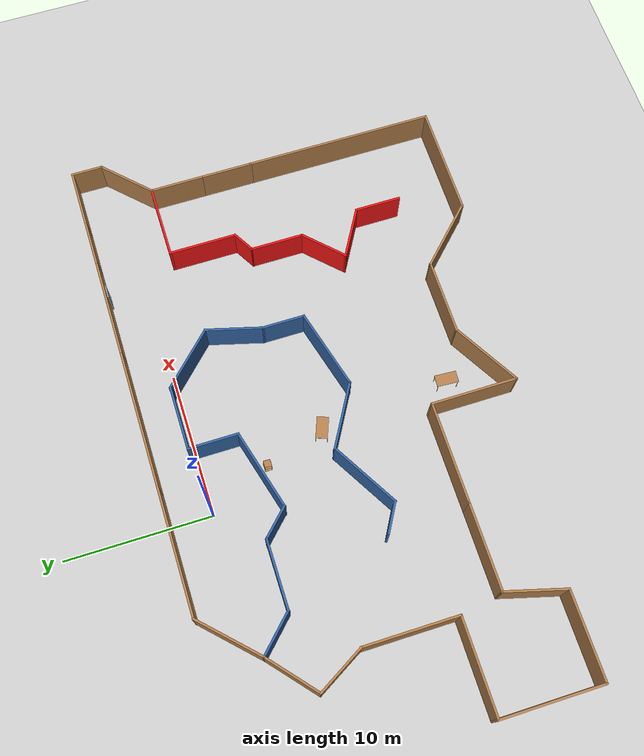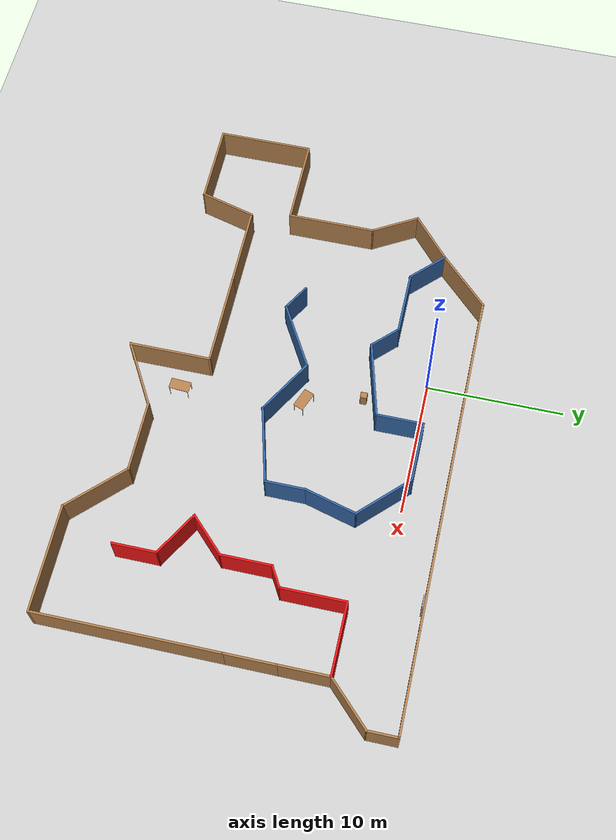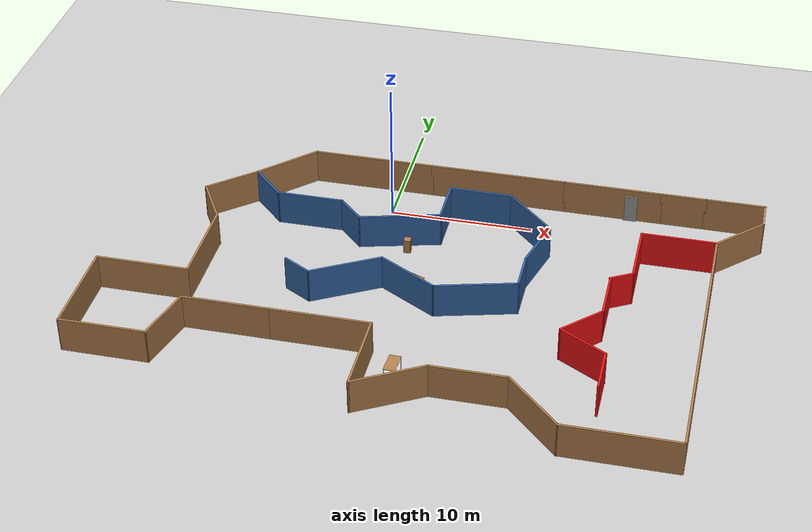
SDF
<sdf version="1.6">
 <world name="default">
  <model name="ground_plane">
   <static>1</static>
   <link name="link">
    <collision name="collision">
     <geometry><plane><normal>0 0 1</normal><size>100 100</size></plane></geometry>
     <surface>
      <contact><collide_bitmask>65535</collide_bitmask></contact>
      <friction><ode><mu>100</mu><mu2>50</mu2></ode></friction>
     </surface>
    </collision>
    <visual name="visual">
     <cast_shadows>0</cast_shadows>
     <geometry><plane><normal>0 0 1</normal><size>100 100</size></plane></geometry>
     <material>
      <script><uri>file://media/materials/scripts/gazebo.material</uri><name>Gazebo/Grey</name></script>
     </material>
    </visual>
   </link>
  </model>
  <model name="office_0">
   <pose>4.3391 -9.8283 0 0 -0 0</pose>
   <link name="Door_0">
    <collision name="Door_0_Collision">
     <geometry><box><size>0.9 0.17 2</size></box></geometry>
     <pose>0 0 1 0 -0 0</pose>
    </collision>
    <visual name="Door_0_Visual">
     <pose>0 0 1 0 -0 0</pose>
     <geometry><box><size>0.9 0.17 2</size></box></geometry>
     <material>
      <script><uri>file://media/materials/scripts/gazebo.material</uri><name>Gazebo/Grey</name></script>
     </material>
    </visual>
    <pose>12.3308 12.5503 0 0 -0 0</pose>
   </link>
   <link name="Wall_0">
    <collision name="Wall_0_Collision">
     <geometry><box><size>5 0.15 2.5</size></box></geometry>
     <pose>0 0 1.25 0 -0 0</pose>
    </collision>
    <visual name="Wall_0_Visual">
     <pose>0 0 1.25 0 -0 0</pose>
     <geometry><box><size>5 0.15 2.5</size></box></geometry>
     <material>
      <script><uri>file://media/materials/scripts/gazebo.material</uri><name>Gazebo/Wood</name></script>
      <ambient>1 1 1 1</ambient>
     </material>
     <meta><layer>0</layer></meta>
    </visual>
    <pose>-12.3636 10.9348 0 0 -0 0.785398</pose>
   </link>
   <link name="Wall_1">
    <collision name="Wall_1_Collision">
     <geometry><box><size>8.75 0.15 2.5</size></box></geometry>
     <pose>0 0 1.25 0 -0 0</pose>
    </collision>
    <visual name="Wall_1_Visual">
     <pose>0 0 1.25 0 -0 0</pose>
     <geometry><box><size>8.75 0.15 2.5</size></box></geometry>
     <material>
      <script><uri>file://media/materials/scripts/gazebo.material</uri><name>Gazebo/Wood</name></script>
      <ambient>1 1 1 1</ambient>
     </material>
     <meta><layer>0</layer></meta>
    </visual>
    <pose>-6.3489 12.6496 0 0 -0 0</pose>
   </link>
   <link name="Wall_10">
    <collision name="Wall_10_Collision">
     <geometry><box><size>13.25 0.15 2.5</size></box></geometry>
     <pose>0 0 1.25 0 -0 0</pose>
    </collision>
    <visual name="Wall_10_Visual">
     <pose>0 0 1.25 0 -0 0</pose>
     <geometry><box><size>13.25 0.15 2.5</size></box></geometry>
     <material>
      <script><uri>file://media/materials/scripts/gazebo.material</uri><name>Gazebo/Wood</name></script>
      <ambient>1 1 1 1</ambient>
     </material>
     <meta><layer>0</layer></meta>
    </visual>
    <pose>18.702 -6.09957 0 0 -0 -1.5708</pose>
   </link>
   <link name="Wall_11">
    <collision name="Wall_11_Collision">
     <geometry><box><size>7.75 0.15 2.5</size></box></geometry>
     <pose>0 0 1.25 0 -0 0</pose>
    </collision>
    <visual name="Wall_11_Visual">
     <pose>0 0 1.25 0 -0 0</pose>
     <geometry><box><size>7.75 0.15 2.5</size></box></geometry>
     <material>
      <script><uri>file://media/materials/scripts/gazebo.material</uri><name>Gazebo/Wood</name></script>
      <ambient>1 1 1 1</ambient>
     </material>
     <meta><layer>0</layer></meta>
    </visual>
    <pose>14.902 -12.6496 0 0 -0 3.14159</pose>
   </link>
   <link name="Wall_12">
    <collision name="Wall_12_Collision">
     <geometry><box><size>5.25 0.15 2.5</size></box></geometry>
     <pose>0 0 1.25 0 -0 0</pose>
    </collision>
    <visual name="Wall_12_Visual">
     <pose>0 0 1.25 0 -0 0</pose>
     <geometry><box><size>5.25 0.15 2.5</size></box></geometry>
     <material>
      <script><uri>file://media/materials/scripts/gazebo.material</uri><name>Gazebo/Wood</name></script>
      <ambient>1 1 1 1</ambient>
     </material>
     <meta><layer>0</layer></meta>
    </visual>
    <pose>9.29884 -10.8464 0 0 -0 2.35619</pose>
   </link>
   <link name="Wall_13">
    <collision name="Wall_13_Collision">
     <geometry><box><size>5.25 0.15 2.5</size></box></geometry>
     <pose>0 0 1.25 0 -0 0</pose>
    </collision>
    <visual name="Wall_13_Visual">
     <pose>0 0 1.25 0 -0 0</pose>
     <geometry><box><size>5.25 0.15 2.5</size></box></geometry>
     <material>
      <script><uri>file://media/materials/scripts/gazebo.material</uri><name>Gazebo/Wood</name></script>
      <ambient>1 1 1 1</ambient>
     </material>
     <meta><layer>0</layer></meta>
    </visual>
    <pose>4.94572 -9.04332 0 0 -0 3.14159</pose>
   </link>
   <link name="Wall_14">
    <collision name="Wall_14_Collision">
     <geometry><box><size>5.25 0.15 2.5</size></box></geometry>
     <pose>0 0 1.25 0 -0 0</pose>
    </collision>
    <visual name="Wall_14_Visual">
     <pose>0 0 1.25 0 -0 0</pose>
     <geometry><box><size>5.25 0.15 2.5</size></box></geometry>
     <material>
      <script><uri>file://media/materials/scripts/gazebo.material</uri><name>Gazebo/Wood</name></script>
      <ambient>1 1 1 1</ambient>
     </material>
     <meta><layer>0</layer></meta>
    </visual>
    <pose>0.187355 -10.3183 0 0 -0 -2.61799</pose>
   </link>
   <link name="Wall_15">
    <collision name="Wall_15_Collision">
     <geometry><box><size>6 0.15 2.5</size></box></geometry>
     <pose>0 0 1.25 0 -0 0</pose>
    </collision>
    <visual name="Wall_15_Visual">
     <pose>0 0 1.25 0 -0 0</pose>
     <geometry><box><size>6 0.15 2.5</size></box></geometry>
     <material>
      <script><uri>file://media/materials/scripts/gazebo.material</uri><name>Gazebo/Wood</name></script>
      <ambient>1 1 1 1</ambient>
     </material>
     <meta><layer>0</layer></meta>
    </visual>
    <pose>-2.02101 -8.66832 0 0 -0 1.5708</pose>
   </link>
   <link name="Wall_16">
    <collision name="Wall_16_Collision">
     <geometry><box><size>7 0.15 2.5</size></box></geometry>
     <pose>0 0 1.25 0 -0 0</pose>
    </collision>
    <visual name="Wall_16_Visual">
     <pose>0 0 1.25 0 -0 0</pose>
     <geometry><box><size>7 0.15 2.5</size></box></geometry>
     <material>
      <script><uri>file://media/materials/scripts/gazebo.material</uri><name>Gazebo/Wood</name></script>
      <ambient>1 1 1 1</ambient>
     </material>
     <meta><layer>0</layer></meta>
    </visual>
    <pose>-5.44601 -5.74332 0 0 -0 3.14159</pose>
   </link>
   <link name="Wall_17">
    <collision name="Wall_17_Collision">
     <geometry><box><size>6 0.15 2.5</size></box></geometry>
     <pose>0 0 1.25 0 -0 0</pose>
    </collision>
    <visual name="Wall_17_Visual">
     <pose>0 0 1.25 0 -0 0</pose>
     <geometry><box><size>6 0.15 2.5</size></box></geometry>
     <material>
      <script><uri>file://media/materials/scripts/gazebo.material</uri><name>Gazebo/Wood</name></script>
      <ambient>1 1 1 1</ambient>
     </material>
     <meta><layer>0</layer></meta>
    </visual>
    <pose>-11.796 -5.74332 0 0 -0 3.14159</pose>
   </link>
   <link name="Wall_18">
    <collision name="Wall_18_Collision">
     <geometry><box><size>4.25 0.15 2.5</size></box></geometry>
     <pose>0 0 1.25 0 -0 0</pose>
    </collision>
    <visual name="Wall_18_Visual">
     <pose>0 0 1.25 0 -0 0</pose>
     <geometry><box><size>4.25 0.15 2.5</size></box></geometry>
     <material>
      <script><uri>file://media/materials/scripts/gazebo.material</uri><name>Gazebo/Wood</name></script>
      <ambient>1 1 1 1</ambient>
     </material>
     <meta><layer>0</layer></meta>
    </visual>
    <pose>-15.2516 -7.72347 0 0 -0 -1.8326</pose>
   </link>
   <link name="Wall_19">
    <collision name="Wall_19_Collision">
     <geometry><box><size>6 0.15 2.5</size></box></geometry>
     <pose>0 0 1.25 0 -0 0</pose>
    </collision>
    <visual name="Wall_19_Visual">
     <pose>0 0 1.25 0 -0 0</pose>
     <geometry><box><size>6 0.15 2.5</size></box></geometry>
     <material>
      <script><uri>file://media/materials/scripts/gazebo.material</uri><name>Gazebo/Wood</name></script>
      <ambient>1 1 1 1</ambient>
     </material>
     <meta><layer>0</layer></meta>
    </visual>
    <pose>-18.7072 -9.70362 0 0 -0 3.14159</pose>
   </link>
   <link name="Wall_2">
    <collision name="Wall_2_Collision">
     <geometry><box><size>9.75 0.15 2.5</size></box></geometry>
     <pose>0 0 1.25 0 -0 0</pose>
    </collision>
    <visual name="Wall_2_Visual">
     <pose>0 0 1.25 0 -0 0</pose>
     <geometry><box><size>9.75 0.15 2.5</size></box></geometry>
     <material>
      <script><uri>file://media/materials/scripts/gazebo.material</uri><name>Gazebo/Wood</name></script>
      <ambient>1 1 1 1</ambient>
     </material>
     <meta><layer>0</layer></meta>
    </visual>
    <pose>2.7511 12.6496 0 0 -0 0</pose>
   </link>
   <link name="Wall_20">
    <collision name="Wall_20_Collision">
     <geometry><box><size>7 0.15 2.5</size></box></geometry>
     <pose>0 0 1.25 0 -0 0</pose>
    </collision>
    <visual name="Wall_20_Visual">
     <pose>0 0 1.25 0 -0 0</pose>
     <geometry><box><size>7 0.15 2.5</size></box></geometry>
     <material>
      <script><uri>file://media/materials/scripts/gazebo.material</uri><name>Gazebo/Wood</name></script>
      <ambient>1 1 1 1</ambient>
     </material>
     <meta><layer>0</layer></meta>
    </visual>
    <pose>-21.6322 -6.27862 0 0 -0 1.5708</pose>
   </link>
   <link name="Wall_21">
    <collision name="Wall_21_Collision">
     <geometry><box><size>6.5 0.15 2.5</size></box></geometry>
     <pose>0 0 1.25 0 -0 0</pose>
    </collision>
    <visual name="Wall_21_Visual">
     <pose>0 0 1.25 0 -0 0</pose>
     <geometry><box><size>6.5 0.15 2.5</size></box></geometry>
     <material>
      <script><uri>file://media/materials/scripts/gazebo.material</uri><name>Gazebo/Wood</name></script>
      <ambient>1 1 1 1</ambient>
     </material>
     <meta><layer>0</layer></meta>
    </visual>
    <pose>-18.4572 -2.85362 0 0 -0 0</pose>
   </link>
   <link name="Wall_22">
    <collision name="Wall_22_Collision">
     <geometry><box><size>6.5 0.15 2.5</size></box></geometry>
     <pose>0 0 1.25 0 -0 0</pose>
    </collision>
    <visual name="Wall_22_Visual">
     <pose>0 0 1.25 0 -0 0</pose>
     <geometry><box><size>6.5 0.15 2.5</size></box></geometry>
     <material>
      <script><uri>file://media/materials/scripts/gazebo.material</uri><name>Gazebo/Wood</name></script>
      <ambient>1 1 1 1</ambient>
     </material>
     <meta><layer>0</layer></meta>
    </visual>
    <pose>-15.2822 0.32138 0 0 -0 1.5708</pose>
   </link>
   <link name="Wall_23">
    <collision name="Wall_23_Collision">
     <geometry><box><size>3.75 0.15 2.5</size></box></geometry>
     <pose>0 0 1.25 0 -0 0</pose>
    </collision>
    <visual name="Wall_23_Visual">
     <pose>0 0 1.25 0 -0 0</pose>
     <geometry><box><size>3.75 0.15 2.5</size></box></geometry>
     <material>
      <script><uri>file://media/materials/scripts/gazebo.material</uri><name>Gazebo/Wood</name></script>
      <ambient>1 1 1 1</ambient>
     </material>
     <meta><layer>0</layer></meta>
    </visual>
    <pose>-16.1822 5.05523 0 0 -0 2.0944</pose>
   </link>
   <link name="Wall_24">
    <collision name="Wall_24_Collision">
     <geometry><box><size>4.12671 0.15 2.5</size></box></geometry>
     <pose>0 0 1.25 0 -0 0</pose>
    </collision>
    <visual name="Wall_24_Visual">
     <pose>0 0 1.25 0 -0 0</pose>
     <geometry><box><size>4.12671 0.15 2.5</size></box></geometry>
     <material>
      <script><uri>file://media/materials/scripts/gazebo.material</uri><name>Gazebo/Wood</name></script>
      <ambient>1 1 1 1</ambient>
     </material>
     <meta><layer>0</layer></meta>
    </visual>
    <pose>-15.5803 7.91709 0 0 -0 0.71461</pose>
   </link>
   <link name="Wall_25">
    <collision name="Wall_25_Collision">
     <geometry><box><size>3.25 0.15 2.5</size></box></geometry>
     <pose>0 0 1.25 0 -0 0</pose>
    </collision>
    <visual name="Wall_25_Visual">
     <pose>0 0 1.25 0 -0 0</pose>
     <geometry><box><size>3.25 0.15 2.5</size></box></geometry>
     <material>
      <script><uri>file://media/materials/scripts/gazebo.material</uri><name>Gazebo/Grey</name></script>
      <ambient>0.203922 0.396078 0.643137 1</ambient>
     </material>
     <meta><layer>0</layer></meta>
    </visual>
    <pose>-12.9824 8.12409 0 0 -0 -0.785398</pose>
   </link>
   <link name="Wall_26">
    <collision name="Wall_26_Collision">
     <geometry><box><size>4.75 0.15 2.5</size></box></geometry>
     <pose>0 0 1.25 0 -0 0</pose>
    </collision>
    <visual name="Wall_26_Visual">
     <pose>0 0 1.25 0 -0 0</pose>
     <geometry><box><size>4.75 0.15 2.5</size></box></geometry>
     <material>
      <script><uri>file://media/materials/scripts/gazebo.material</uri><name>Gazebo/Grey</name></script>
      <ambient>0.203922 0.396078 0.643137 1</ambient>
     </material>
     <meta><layer>0</layer></meta>
    </visual>
    <pose>-9.58634 7.02807 0 0 -0 0</pose>
   </link>
   <link name="Wall_27">
    <collision name="Wall_27_Collision">
     <geometry><box><size>2.5 0.15 2.5</size></box></geometry>
     <pose>0 0 1.25 0 -0 0</pose>
    </collision>
    <visual name="Wall_27_Visual">
     <pose>0 0 1.25 0 -0 0</pose>
     <geometry><box><size>2.5 0.15 2.5</size></box></geometry>
     <material>
      <script><uri>file://media/materials/scripts/gazebo.material</uri><name>Gazebo/Grey</name></script>
      <ambient>0.203922 0.396078 0.643137 1</ambient>
     </material>
     <meta><layer>0</layer></meta>
    </visual>
    <pose>-6.45548 6.19722 0 0 -0 -0.785398</pose>
   </link>
   <link name="Wall_28">
    <collision name="Wall_28_Collision">
     <geometry><box><size>5.75 0.15 2.5</size></box></geometry>
     <pose>0 0 1.25 0 -0 0</pose>
    </collision>
    <visual name="Wall_28_Visual">
     <pose>0 0 1.25 0 -0 0</pose>
     <geometry><box><size>5.75 0.15 2.5</size></box></geometry>
     <material>
      <script><uri>file://media/materials/scripts/gazebo.material</uri><name>Gazebo/Grey</name></script>
      <ambient>0.203922 0.396078 0.643137 1</ambient>
     </material>
     <meta><layer>0</layer></meta>
    </visual>
    <pose>-2.92004 6.09106 0 0 -0 0.261799</pose>
   </link>
   <link name="Wall_29">
    <collision name="Wall_29_Collision">
     <geometry><box><size>3.5 0.15 2.5</size></box></geometry>
     <pose>0 0 1.25 0 -0 0</pose>
    </collision>
    <visual name="Wall_29_Visual">
     <pose>0 0 1.25 0 -0 0</pose>
     <geometry><box><size>3.5 0.15 2.5</size></box></geometry>
     <material>
      <script><uri>file://media/materials/scripts/gazebo.material</uri><name>Gazebo/Grey</name></script>
      <ambient>0.203922 0.396078 0.643137 1</ambient>
     </material>
     <meta><layer>0</layer></meta>
    </visual>
    <pose>-0.215449 8.49076 0 0 -0 1.5708</pose>
   </link>
   <link name="Wall_3">
    <collision name="Wall_3_Collision">
     <geometry><box><size>7 0.15 2.5</size></box></geometry>
     <pose>0 0 1.25 0 -0 0</pose>
    </collision>
    <visual name="Wall_3_Visual">
     <pose>0 0 1.25 0 -0 0</pose>
     <geometry><box><size>7 0.15 2.5</size></box></geometry>
     <material>
      <script><uri>file://media/materials/scripts/gazebo.material</uri><name>Gazebo/Wood</name></script>
      <ambient>1 1 1 1</ambient>
     </material>
     <meta><layer>0</layer></meta>
    </visual>
    <pose>10.9761 12.6496 0 0 -0 0</pose>
   </link>
   <link name="Wall_30">
    <collision name="Wall_30_Collision">
     <geometry><box><size>4.5 0.15 2.5</size></box></geometry>
     <pose>0 0 1.25 0 -0 0</pose>
    </collision>
    <visual name="Wall_30_Visual">
     <pose>0 0 1.25 0 -0 0</pose>
     <geometry><box><size>4.5 0.15 2.5</size></box></geometry>
     <material>
      <script><uri>file://media/materials/scripts/gazebo.material</uri><name>Gazebo/Grey</name></script>
      <ambient>0.203922 0.396078 0.643137 1</ambient>
     </material>
     <meta><layer>0</layer></meta>
    </visual>
    <pose>1.95955 10.1658 0 0 -0 0</pose>
   </link>
   <link name="Wall_31">
    <collision name="Wall_31_Collision">
     <geometry><box><size>4.75 0.15 2.5</size></box></geometry>
     <pose>0 0 1.25 0 -0 0</pose>
    </collision>
    <visual name="Wall_31_Visual">
     <pose>0 0 1.25 0 -0 0</pose>
     <geometry><box><size>4.75 0.15 2.5</size></box></geometry>
     <material>
      <script><uri>file://media/materials/scripts/gazebo.material</uri><name>Gazebo/Grey</name></script>
      <ambient>0.203922 0.396078 0.643137 1</ambient>
     </material>
     <meta><layer>0</layer></meta>
    </visual>
    <pose>5.7609 8.53941 0 0 -0 -0.785398</pose>
   </link>
   <link name="Wall_32">
    <collision name="Wall_32_Collision">
     <geometry><box><size>4 0.15 2.5</size></box></geometry>
     <pose>0 0 1.25 0 -0 0</pose>
    </collision>
    <visual name="Wall_32_Visual">
     <pose>0 0 1.25 0 -0 0</pose>
     <geometry><box><size>4 0.15 2.5</size></box></geometry>
     <material>
      <script><uri>file://media/materials/scripts/gazebo.material</uri><name>Gazebo/Grey</name></script>
      <ambient>0.203922 0.396078 0.643137 1</ambient>
     </material>
     <meta><layer>0</layer></meta>
    </visual>
    <pose>6.88901 5.05366 0 0 -0 -1.8326</pose>
   </link>
   <link name="Wall_33">
    <collision name="Wall_33_Collision">
     <geometry><box><size>3 0.15 2.5</size></box></geometry>
     <pose>0 0 1.25 0 -0 0</pose>
    </collision>
    <visual name="Wall_33_Visual">
     <pose>0 0 1.25 0 -0 0</pose>
     <geometry><box><size>3 0.15 2.5</size></box></geometry>
     <material>
      <script><uri>file://media/materials/scripts/gazebo.material</uri><name>Gazebo/Grey</name></script>
      <ambient>0.203922 0.396078 0.643137 1</ambient>
     </material>
     <meta><layer>0</layer></meta>
    </visual>
    <pose>6.39079 1.76925 0 0 -0 -1.5708</pose>
   </link>
   <link name="Wall_34">
    <collision name="Wall_34_Collision">
     <geometry><box><size>5.75 0.15 2.5</size></box></geometry>
     <pose>0 0 1.25 0 -0 0</pose>
    </collision>
    <visual name="Wall_34_Visual">
     <pose>0 0 1.25 0 -0 0</pose>
     <geometry><box><size>5.75 0.15 2.5</size></box></geometry>
     <material>
      <script><uri>file://media/materials/scripts/gazebo.material</uri><name>Gazebo/Grey</name></script>
      <ambient>0.203922 0.396078 0.643137 1</ambient>
     </material>
     <meta><layer>0</layer></meta>
    </visual>
    <pose>3.6862 -0.380443 0 0 -0 -2.87979</pose>
   </link>
   <link name="Wall_35">
    <collision name="Wall_35_Collision">
     <geometry><box><size>4.75 0.15 2.5</size></box></geometry>
     <pose>0 0 1.25 0 -0 0</pose>
    </collision>
    <visual name="Wall_35_Visual">
     <pose>0 0 1.25 0 -0 0</pose>
     <geometry><box><size>4.75 0.15 2.5</size></box></geometry>
     <material>
      <script><uri>file://media/materials/scripts/gazebo.material</uri><name>Gazebo/Grey</name></script>
      <ambient>0.203922 0.396078 0.643137 1</ambient>
     </material>
     <meta><layer>0</layer></meta>
    </visual>
    <pose>-1.01025 0.044864 0 0 -0 2.61799</pose>
   </link>
   <link name="Wall_36">
    <collision name="Wall_36_Collision">
     <geometry><box><size>5.25 0.15 2.5</size></box></geometry>
     <pose>0 0 1.25 0 -0 0</pose>
    </collision>
    <visual name="Wall_36_Visual">
     <pose>0 0 1.25 0 -0 0</pose>
     <geometry><box><size>5.25 0.15 2.5</size></box></geometry>
     <material>
      <script><uri>file://media/materials/scripts/gazebo.material</uri><name>Gazebo/Grey</name></script>
      <ambient>0.203922 0.396078 0.643137 1</ambient>
     </material>
     <meta><layer>0</layer></meta>
    </visual>
    <pose>-5.21048 -0.080136 0 0 -0 -2.61799</pose>
   </link>
   <link name="Wall_37">
    <collision name="Wall_37_Collision">
     <geometry><box><size>2.25 0.15 2.5</size></box></geometry>
     <pose>0 0 1.25 0 -0 0</pose>
    </collision>
    <visual name="Wall_37_Visual">
     <pose>0 0 1.25 0 -0 0</pose>
     <geometry><box><size>2.25 0.15 2.5</size></box></geometry>
     <material>
      <script><uri>file://media/materials/scripts/gazebo.material</uri><name>Gazebo/Grey</name></script>
      <ambient>0.203922 0.396078 0.643137 1</ambient>
     </material>
     <meta><layer>0</layer></meta>
    </visual>
    <pose>-8.32817 -0.830136 0 0 -0 2.61799</pose>
   </link>
   <link name="Wall_39">
    <collision name="Wall_39_Collision">
     <geometry><box><size>5.25 0.15 2.5</size></box></geometry>
     <pose>0 0 1.25 0 -0 0</pose>
    </collision>
    <visual name="Wall_39_Visual">
     <pose>0 0 1.25 0 -0 0</pose>
     <geometry><box><size>5.25 0.15 2.5</size></box></geometry>
     <material>
      <script><uri>file://media/materials/scripts/gazebo.material</uri><name>Gazebo/Grey</name></script>
      <ambient>0.945098 0.0745098 0.0745098 1</ambient>
     </material>
     <meta><layer>0</layer></meta>
    </visual>
    <pose>16.152 7.65043 0 0 -0 3.14159</pose>
   </link>
   <link name="Wall_4">
    <collision name="Wall_4_Collision">
     <geometry><box><size>3.25 0.15 2.5</size></box></geometry>
     <pose>0 0 1.25 0 -0 0</pose>
    </collision>
    <visual name="Wall_4_Visual">
     <pose>0 0 1.25 0 -0 0</pose>
     <geometry><box><size>3.25 0.15 2.5</size></box></geometry>
     <material>
      <script><uri>file://media/materials/scripts/gazebo.material</uri><name>Gazebo/Wood</name></script>
      <ambient>1 1 1 1</ambient>
     </material>
     <meta><layer>0</layer></meta>
    </visual>
    <pose>15.9511 12.6496 0 0 -0 0</pose>
   </link>
   <link name="Wall_40">
    <collision name="Wall_40_Collision">
     <geometry><box><size>4.75 0.15 2.5</size></box></geometry>
     <pose>0 0 1.25 0 -0 0</pose>
    </collision>
    <visual name="Wall_40_Visual">
     <pose>0 0 1.25 0 -0 0</pose>
     <geometry><box><size>4.75 0.15 2.5</size></box></geometry>
     <material>
      <script><uri>file://media/materials/scripts/gazebo.material</uri><name>Gazebo/Grey</name></script>
      <ambient>0.945098 0.0745098 0.0745098 1</ambient>
     </material>
     <meta><layer>0</layer></meta>
    </visual>
    <pose>13.602 5.35043 0 0 -0 -1.5708</pose>
   </link>
   <link name="Wall_41">
    <collision name="Wall_41_Collision">
     <geometry><box><size>1.75 0.15 2.5</size></box></geometry>
     <pose>0 0 1.25 0 -0 0</pose>
    </collision>
    <visual name="Wall_41_Visual">
     <pose>0 0 1.25 0 -0 0</pose>
     <geometry><box><size>1.75 0.15 2.5</size></box></geometry>
     <material>
      <script><uri>file://media/materials/scripts/gazebo.material</uri><name>Gazebo/Grey</name></script>
      <ambient>0.945098 0.0745098 0.0745098 1</ambient>
     </material>
     <meta><layer>0</layer></meta>
    </visual>
    <pose>12.9091 2.65043 0 0 -0 -2.61799</pose>
   </link>
   <link name="Wall_42">
    <collision name="Wall_42_Collision">
     <geometry><box><size>3.75 0.15 2.5</size></box></geometry>
     <pose>0 0 1.25 0 -0 0</pose>
    </collision>
    <visual name="Wall_42_Visual">
     <pose>0 0 1.25 0 -0 0</pose>
     <geometry><box><size>3.75 0.15 2.5</size></box></geometry>
     <material>
      <script><uri>file://media/materials/scripts/gazebo.material</uri><name>Gazebo/Grey</name></script>
      <ambient>0.945098 0.0745098 0.0745098 1</ambient>
     </material>
     <meta><layer>0</layer></meta>
    </visual>
    <pose>12.2163 0.450431 0 0 -0 -1.5708</pose>
   </link>
   <link name="Wall_43">
    <collision name="Wall_43_Collision">
     <geometry><box><size>3.5 0.15 2.5</size></box></geometry>
     <pose>0 0 1.25 0 -0 0</pose>
    </collision>
    <visual name="Wall_43_Visual">
     <pose>0 0 1.25 0 -0 0</pose>
     <geometry><box><size>3.5 0.15 2.5</size></box></geometry>
     <material>
      <script><uri>file://media/materials/scripts/gazebo.material</uri><name>Gazebo/Grey</name></script>
      <ambient>0.945098 0.0745098 0.0745098 1</ambient>
     </material>
     <meta><layer>0</layer></meta>
    </visual>
    <pose>11.0319 -2.53397 0 0 -0 -2.35619</pose>
   </link>
   <link name="Wall_44">
    <collision name="Wall_44_Collision">
     <geometry><box><size>3.75 0.15 2.5</size></box></geometry>
     <pose>0 0 1.25 0 -0 0</pose>
    </collision>
    <visual name="Wall_44_Visual">
     <pose>0 0 1.25 0 -0 0</pose>
     <geometry><box><size>3.75 0.15 2.5</size></box></geometry>
     <material>
      <script><uri>file://media/materials/scripts/gazebo.material</uri><name>Gazebo/Grey</name></script>
      <ambient>0.945098 0.0745098 0.0745098 1</ambient>
     </material>
     <meta><layer>0</layer></meta>
    </visual>
    <pose>11.4064 -4.61838 0 0 -0 -0.523599</pose>
   </link>
   <link name="Wall_45">
    <collision name="Wall_45_Collision">
     <geometry><box><size>3.25 0.15 2.5</size></box></geometry>
     <pose>0 0 1.25 0 -0 0</pose>
    </collision>
    <visual name="Wall_45_Visual">
     <pose>0 0 1.25 0 -0 0</pose>
     <geometry><box><size>3.25 0.15 2.5</size></box></geometry>
     <material>
      <script><uri>file://media/materials/scripts/gazebo.material</uri><name>Gazebo/Grey</name></script>
      <ambient>0.945098 0.0745098 0.0745098 1</ambient>
     </material>
     <meta><layer>0</layer></meta>
    </visual>
    <pose>12.9652 -7.06838 0 0 -0 -1.5708</pose>
   </link>
   <link name="Wall_5">
    <collision name="Wall_5_Collision">
     <geometry><box><size>4.25 0.15 2.5</size></box></geometry>
     <pose>0 0 1.25 0 -0 0</pose>
    </collision>
    <visual name="Wall_5_Visual">
     <pose>0 0 1.25 0 -0 0</pose>
     <geometry><box><size>4.25 0.15 2.5</size></box></geometry>
     <material>
      <script><uri>file://media/materials/scripts/gazebo.material</uri><name>Gazebo/Wood</name></script>
      <ambient>1 1 1 1</ambient>
     </material>
     <meta><layer>0</layer></meta>
    </visual>
    <pose>19.5511 12.6496 0 0 -0 0</pose>
   </link>
   <link name="Wall_6">
    <collision name="Wall_6_Collision">
     <geometry><box><size>2.25 0.15 2.5</size></box></geometry>
     <pose>0 0 1.25 0 -0 0</pose>
    </collision>
    <visual name="Wall_6_Visual">
     <pose>0 0 1.25 0 -0 0</pose>
     <geometry><box><size>2.25 0.15 2.5</size></box></geometry>
     <material>
      <script><uri>file://media/materials/scripts/gazebo.material</uri><name>Gazebo/Wood</name></script>
      <ambient>1 1 1 1</ambient>
     </material>
     <meta><layer>0</layer></meta>
    </visual>
    <pose>21.6011 11.5996 0 0 -0 -1.5708</pose>
   </link>
   <link name="Wall_7">
    <collision name="Wall_7_Collision">
     <geometry><box><size>4.25 0.15 2.5</size></box></geometry>
     <pose>0 0 1.25 0 -0 0</pose>
    </collision>
    <visual name="Wall_7_Visual">
     <pose>0 0 1.25 0 -0 0</pose>
     <geometry><box><size>4.25 0.15 2.5</size></box></geometry>
     <material>
      <script><uri>file://media/materials/scripts/gazebo.material</uri><name>Gazebo/Wood</name></script>
      <ambient>1 1 1 1</ambient>
     </material>
     <meta><layer>0</layer></meta>
    </visual>
    <pose>20.1515 9.1 0 0 -0 -2.35619</pose>
   </link>
   <link name="Wall_8">
    <collision name="Wall_8_Collision">
     <geometry><box><size>3.75 0.15 2.5</size></box></geometry>
     <pose>0 0 1.25 0 -0 0</pose>
    </collision>
    <visual name="Wall_8_Visual">
     <pose>0 0 1.25 0 -0 0</pose>
     <geometry><box><size>3.75 0.15 2.5</size></box></geometry>
     <material>
      <script><uri>file://media/materials/scripts/gazebo.material</uri><name>Gazebo/Wood</name></script>
      <ambient>1 1 1 1</ambient>
     </material>
     <meta><layer>0</layer></meta>
    </visual>
    <pose>18.702 5.85043 0 0 -0 -1.5708</pose>
   </link>
   <link name="Wall_9">
    <collision name="Wall_9_Collision">
     <geometry><box><size>3.75 0.15 2.5</size></box></geometry>
     <pose>0 0 1.25 0 -0 0</pose>
    </collision>
    <visual name="Wall_9_Visual">
     <pose>0 0 1.25 0 -0 0</pose>
     <geometry><box><size>3.75 0.15 2.5</size></box></geometry>
     <material>
      <script><uri>file://media/materials/scripts/gazebo.material</uri><name>Gazebo/Wood</name></script>
      <ambient>1 1 1 1</ambient>
     </material>
     <meta><layer>0</layer></meta>
    </visual>
    <pose>18.702 2.25043 0 0 -0 -1.5708</pose>
   </link>
   <static>1</static>
  </model>
  <model name="cabinet">
   <static>1</static>
   <link name="cabinet_bottom_plate">
    <inertial>
     <pose>0 0 -1 0 -0 0</pose>
     <inertia><ixx>2.05</ixx><ixy>0</ixy><ixz>0</ixz><iyy>2.05</iyy><iyz>0</iyz><izz>2.05</izz></inertia>
     <mass>25</mass>
    </inertial>
    <collision name="cabinet_bottom_plate_geom">
     <pose>0 0 0.01 0 -0 0</pose>
     <geometry><box><size>0.45 0.45 0.02</size></box></geometry>
    </collision>
    <visual name="cabinet_bottom_plate_geom_visual">
     <pose>0 0 0.01 0 -0 0</pose>
     <geometry><box><size>0.45 0.45 0.02</size></box></geometry>
     <material>
      <script><uri>file://media/materials/scripts/gazebo.material</uri><name>Gazebo/Wood</name></script>
     </material>
    </visual>
    <collision name="cabinet_bottom_plate_geom_cabinet_back_plate">
     <pose>0.235 0 0.51 0 -0 0</pose>
     <geometry><box><size>0.02 0.45 1.02</size></box></geometry>
    </collision>
    <visual name="cabinet_bottom_plate_geom_cabinet_back_plate_visual">
     <pose>0.235 0 0.51 0 -0 0</pose>
     <geometry><box><size>0.02 0.45 1.02</size></box></geometry>
     <material>
      <script><uri>file://media/materials/scripts/gazebo.material</uri><name>Gazebo/Wood</name></script>
     </material>
    </visual>
    <collision name="cabinet_bottom_plate_geom_cabinet_left_plate">
     <pose>0 0.235 0.51 0 -0 0</pose>
     <geometry><box><size>0.45 0.02 1.02</size></box></geometry>
    </collision>
    <visual name="cabinet_bottom_plate_geom_cabinet_left_plate_visual">
     <pose>0 0.235 0.51 0 -0 0</pose>
     <geometry><box><size>0.45 0.02 1.02</size></box></geometry>
     <material>
      <script><uri>file://media/materials/scripts/gazebo.material</uri><name>Gazebo/Wood</name></script>
     </material>
    </visual>
    <collision name="cabinet_bottom_plate_geom_cabinet_middle_plate">
     <pose>0 0 0.51 0 -0 0</pose>
     <geometry><box><size>0.45 0.45 0.02</size></box></geometry>
    </collision>
    <visual name="cabinet_bottom_plate_geom_cabinet_middle_plate_visual">
     <pose>0 0 0.51 0 -0 0</pose>
     <geometry><box><size>0.45 0.45 0.02</size></box></geometry>
     <material>
      <script><uri>file://media/materials/scripts/gazebo.material</uri><name>Gazebo/Wood</name></script>
     </material>
    </visual>
    <collision name="cabinet_bottom_plate_geom_cabinet_right_plate">
     <pose>0 -0.235 0.51 0 -0 0</pose>
     <geometry><box><size>0.45 0.02 1.02</size></box></geometry>
    </collision>
    <visual name="cabinet_bottom_plate_geom_cabinet_right_plate_visual">
     <pose>0 -0.235 0.51 0 -0 0</pose>
     <geometry><box><size>0.45 0.02 1.02</size></box></geometry>
     <material>
      <script><uri>file://media/materials/scripts/gazebo.material</uri><name>Gazebo/Wood</name></script>
     </material>
    </visual>
    <collision name="cabinet_bottom_plate_geom_cabinet_top_plate">
     <pose>0 0 1.01 0 -0 0</pose>
     <geometry><box><size>0.45 0.45 0.02</size></box></geometry>
    </collision>
    <visual name="cabinet_bottom_plate_geom_cabinet_top_plate_visual">
     <pose>0 0 1.01 0 -0 0</pose>
     <geometry><box><size>0.45 0.45 0.02</size></box></geometry>
     <material>
      <script><uri>file://media/materials/scripts/gazebo.material</uri><name>Gazebo/Wood</name></script>
     </material>
    </visual>
   </link>
   <pose>2.07402 -4.29667 0 0 -0 0</pose>
  </model>
  <model name="table_clone_0">
   <static>1</static>
   <link name="link">
    <collision name="surface">
     <pose>0 0 1 0 -0 0</pose>
     <geometry><box><size>1.5 0.8 0.03</size></box></geometry>
     <surface><friction><ode><mu>0.6</mu><mu2>0.6</mu2></ode></friction></surface>
    </collision>
    <visual name="visual1">
     <pose>0 0 1 0 -0 0</pose>
     <geometry><box><size>1.5 0.8 0.03</size></box></geometry>
     <material>
      <script><uri>file://media/materials/scripts/gazebo.material</uri><name>Gazebo/Wood</name></script>
     </material>
    </visual>
    <collision name="front_left_leg">
     <pose>0.68 0.38 0.5 0 -0 0</pose>
     <geometry><cylinder><radius>0.02</radius><length>1</length></cylinder></geometry>
    </collision>
    <visual name="front_left_leg">
     <pose>0.68 0.38 0.5 0 -0 0</pose>
     <geometry><cylinder><radius>0.02</radius><length>1</length></cylinder></geometry>
     <material>
      <script><uri>file://media/materials/scripts/gazebo.material</uri><name>Gazebo/Grey</name></script>
     </material>
    </visual>
    <collision name="front_right_leg">
     <pose>0.68 -0.38 0.5 0 -0 0</pose>
     <geometry><cylinder><radius>0.02</radius><length>1</length></cylinder></geometry>
    </collision>
    <visual name="front_right_leg">
     <pose>0.68 -0.38 0.5 0 -0 0</pose>
     <geometry><cylinder><radius>0.02</radius><length>1</length></cylinder></geometry>
     <material>
      <script><uri>file://media/materials/scripts/gazebo.material</uri><name>Gazebo/Grey</name></script>
     </material>
    </visual>
    <collision name="back_right_leg">
     <pose>-0.68 -0.38 0.5 0 -0 0</pose>
     <geometry><cylinder><radius>0.02</radius><length>1</length></cylinder></geometry>
    </collision>
    <visual name="back_right_leg">
     <pose>-0.68 -0.38 0.5 0 -0 0</pose>
     <geometry><cylinder><radius>0.02</radius><length>1</length></cylinder></geometry>
     <material>
      <script><uri>file://media/materials/scripts/gazebo.material</uri><name>Gazebo/Grey</name></script>
     </material>
    </visual>
    <collision name="back_left_leg">
     <pose>-0.68 0.38 0.5 0 -0 0</pose>
     <geometry><cylinder><radius>0.02</radius><length>1</length></cylinder></geometry>
    </collision>
    <visual name="back_left_leg">
     <pose>-0.68 0.38 0.5 0 -0 0</pose>
     <geometry><cylinder><radius>0.02</radius><length>1</length></cylinder></geometry>
     <material>
      <script><uri>file://media/materials/scripts/gazebo.material</uri><name>Gazebo/Grey</name></script>
     </material>
    </visual>
   </link>
   <pose>3.34853 -8.43723 0 0 0 -0.370009</pose>
  </model>
  <model name="table_clone_9">
   <static>1</static>
   <link name="link">
    <collision name="surface">
     <pose>0 0 1 0 -0 0</pose>
     <geometry><box><size>1.5 0.8 0.03</size></box></geometry>
     <surface><friction><ode><mu>0.6</mu><mu2>0.6</mu2></ode></friction></surface>
    </collision>
    <visual name="visual1">
     <pose>0 0 1 0 -0 0</pose>
     <geometry><box><size>1.5 0.8 0.03</size></box></geometry>
     <material>
      <script><uri>file://media/materials/scripts/gazebo.material</uri><name>Gazebo/Wood</name></script>
     </material>
    </visual>
    <collision name="front_left_leg">
     <pose>0.68 0.38 0.5 0 -0 0</pose>
     <geometry><cylinder><radius>0.02</radius><length>1</length></cylinder></geometry>
    </collision>
    <visual name="front_left_leg">
     <pose>0.68 0.38 0.5 0 -0 0</pose>
     <geometry><cylinder><radius>0.02</radius><length>1</length></cylinder></geometry>
     <material>
      <script><uri>file://media/materials/scripts/gazebo.material</uri><name>Gazebo/Grey</name></script>
     </material>
    </visual>
    <collision name="front_right_leg">
     <pose>0.68 -0.38 0.5 0 -0 0</pose>
     <geometry><cylinder><radius>0.02</radius><length>1</length></cylinder></geometry>
    </collision>
    <visual name="front_right_leg">
     <pose>0.68 -0.38 0.5 0 -0 0</pose>
     <geometry><cylinder><radius>0.02</radius><length>1</length></cylinder></geometry>
     <material>
      <script><uri>file://media/materials/scripts/gazebo.material</uri><name>Gazebo/Grey</name></script>
     </material>
    </visual>
    <collision name="back_right_leg">
     <pose>-0.68 -0.38 0.5 0 -0 0</pose>
     <geometry><cylinder><radius>0.02</radius><length>1</length></cylinder></geometry>
    </collision>
    <visual name="back_right_leg">
     <pose>-0.68 -0.38 0.5 0 -0 0</pose>
     <geometry><cylinder><radius>0.02</radius><length>1</length></cylinder></geometry>
     <material>
      <script><uri>file://media/materials/scripts/gazebo.material</uri><name>Gazebo/Grey</name></script>
     </material>
    </visual>
    <collision name="back_left_leg">
     <pose>-0.68 0.38 0.5 0 -0 0</pose>
     <geometry><cylinder><radius>0.02</radius><length>1</length></cylinder></geometry>
    </collision>
    <visual name="back_left_leg">
     <pose>-0.68 0.38 0.5 0 -0 0</pose>
     <geometry><cylinder><radius>0.02</radius><length>1</length></cylinder></geometry>
     <material>
      <script><uri>file://media/materials/scripts/gazebo.material</uri><name>Gazebo/Grey</name></script>
     </material>
    </visual>
   </link>
   <pose>4.11904 -17.4059 0 0 0 -1.62839</pose>
  </model>
 </world>
</sdf>
